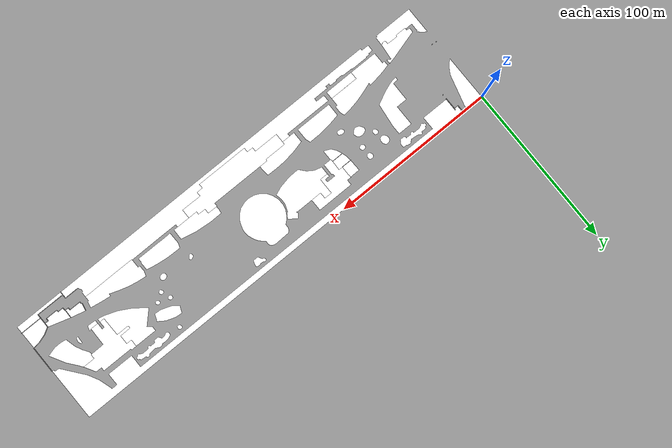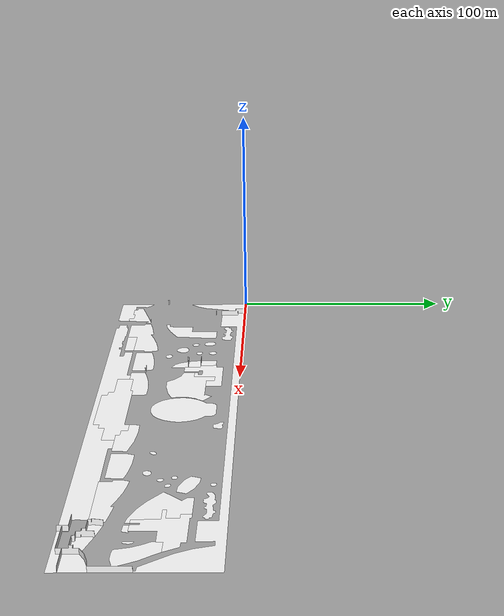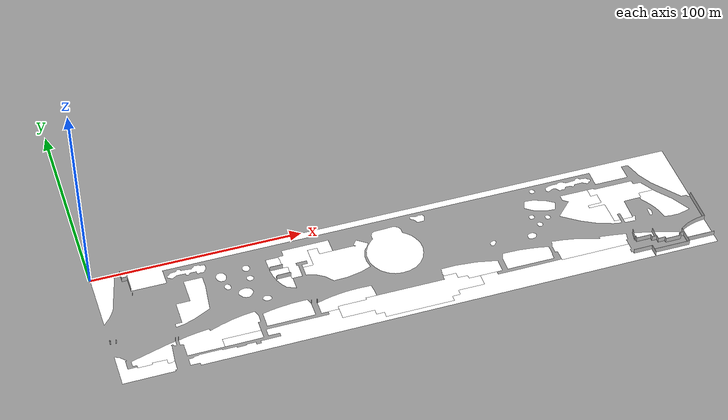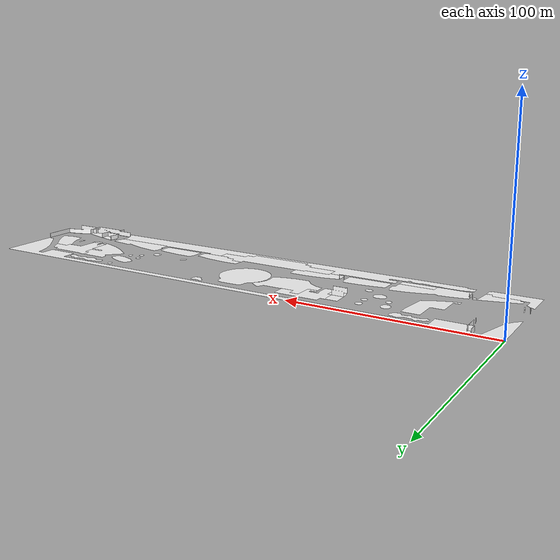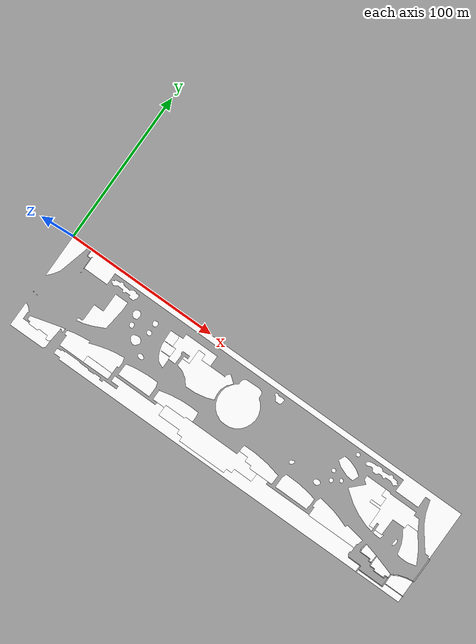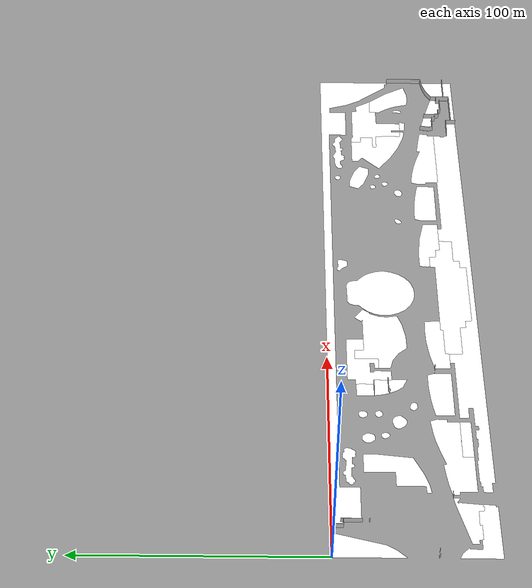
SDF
<sdf version="1.7">
 <model name="airport_terminal_L1">
  <static>true</static>
  <link name="floor_1">
   <visual name="visual">
    <geometry><mesh><uri>model://airport_terminal_L1/meshes/floor_1.obj</uri></mesh></geometry>
    <material>
     <diffuse>1.0 1.0 1.0</diffuse>
     <specular>0.1 0.1 0.1</specular>
     <pbr>
      <metal>
       <metalness>0.0</metalness>
       <albedo_map>model://airport_terminal_L1/meshes/concrete2.png</albedo_map>
      </metal>
     </pbr>
     <script><uri>model://airport_terminal_L1/meshes/</uri><name>floor_1_Diffuse</name></script>
    </material>
   </visual>
   <collision name="collision">
    <geometry><mesh><uri>model://airport_terminal_L1/meshes/floor_1.obj</uri></mesh></geometry>
    <surface><contact><collide_bitmask>0x01</collide_bitmask></contact></surface>
   </collision>
  </link>
  <link name="floor_2">
   <visual name="visual">
    <geometry><mesh><uri>model://airport_terminal_L1/meshes/floor_2.obj</uri></mesh></geometry>
    <material>
     <diffuse>1.0 1.0 1.0</diffuse>
     <specular>0.1 0.1 0.1</specular>
     <pbr>
      <metal>
       <metalness>0.0</metalness>
       <albedo_map>model://airport_terminal_L1/meshes/concrete2.png</albedo_map>
      </metal>
     </pbr>
     <script><uri>model://airport_terminal_L1/meshes/</uri><name>floor_2_Diffuse</name></script>
    </material>
   </visual>
   <collision name="collision">
    <geometry><mesh><uri>model://airport_terminal_L1/meshes/floor_2.obj</uri></mesh></geometry>
    <surface><contact><collide_bitmask>0x01</collide_bitmask></contact></surface>
   </collision>
  </link>
  <link name="floor_3">
   <visual name="visual">
    <geometry><mesh><uri>model://airport_terminal_L1/meshes/floor_3.obj</uri></mesh></geometry>
    <material>
     <diffuse>1.0 1.0 1.0</diffuse>
     <specular>0.1 0.1 0.1</specular>
     <pbr>
      <metal>
       <metalness>0.0</metalness>
       <albedo_map>model://airport_terminal_L1/meshes/concrete2.png</albedo_map>
      </metal>
     </pbr>
     <script><uri>model://airport_terminal_L1/meshes/</uri><name>floor_3_Diffuse</name></script>
    </material>
   </visual>
   <collision name="collision">
    <geometry><mesh><uri>model://airport_terminal_L1/meshes/floor_3.obj</uri></mesh></geometry>
    <surface><contact><collide_bitmask>0x01</collide_bitmask></contact></surface>
   </collision>
  </link>
  <link name="floor_4">
   <visual name="visual">
    <geometry><mesh><uri>model://airport_terminal_L1/meshes/floor_4.obj</uri></mesh></geometry>
    <material>
     <diffuse>1.0 1.0 1.0</diffuse>
     <specular>0.1 0.1 0.1</specular>
     <pbr>
      <metal>
       <metalness>0.0</metalness>
       <albedo_map>model://airport_terminal_L1/meshes/concrete2.png</albedo_map>
      </metal>
     </pbr>
     <script><uri>model://airport_terminal_L1/meshes/</uri><name>floor_4_Diffuse</name></script>
    </material>
   </visual>
   <collision name="collision">
    <geometry><mesh><uri>model://airport_terminal_L1/meshes/floor_4.obj</uri></mesh></geometry>
    <surface><contact><collide_bitmask>0x01</collide_bitmask></contact></surface>
   </collision>
  </link>
  <link name="floor_5">
   <visual name="visual">
    <geometry><mesh><uri>model://airport_terminal_L1/meshes/floor_5.obj</uri></mesh></geometry>
    <material>
     <diffuse>1.0 1.0 1.0</diffuse>
     <specular>0.1 0.1 0.1</specular>
     <pbr>
      <metal>
       <metalness>0.0</metalness>
       <albedo_map>model://airport_terminal_L1/meshes/concrete2.png</albedo_map>
      </metal>
     </pbr>
     <script><uri>model://airport_terminal_L1/meshes/</uri><name>floor_5_Diffuse</name></script>
    </material>
   </visual>
   <collision name="collision">
    <geometry><mesh><uri>model://airport_terminal_L1/meshes/floor_5.obj</uri></mesh></geometry>
    <surface><contact><collide_bitmask>0x01</collide_bitmask></contact></surface>
   </collision>
  </link>
  <link name="floor_6">
   <visual name="visual">
    <geometry><mesh><uri>model://airport_terminal_L1/meshes/floor_6.obj</uri></mesh></geometry>
    <material>
     <diffuse>1.0 1.0 1.0</diffuse>
     <specular>0.1 0.1 0.1</specular>
     <pbr>
      <metal>
       <metalness>0.0</metalness>
       <albedo_map>model://airport_terminal_L1/meshes/concrete2.png</albedo_map>
      </metal>
     </pbr>
     <script><uri>model://airport_terminal_L1/meshes/</uri><name>floor_6_Diffuse</name></script>
    </material>
   </visual>
   <collision name="collision">
    <geometry><mesh><uri>model://airport_terminal_L1/meshes/floor_6.obj</uri></mesh></geometry>
    <surface><contact><collide_bitmask>0x01</collide_bitmask></contact></surface>
   </collision>
  </link>
  <link name="floor_7">
   <visual name="visual">
    <geometry><mesh><uri>model://airport_terminal_L1/meshes/floor_7.obj</uri></mesh></geometry>
    <material>
     <diffuse>1.0 1.0 1.0</diffuse>
     <specular>0.1 0.1 0.1</specular>
     <pbr>
      <metal>
       <metalness>0.0</metalness>
       <albedo_map>model://airport_terminal_L1/meshes/concrete2.png</albedo_map>
      </metal>
     </pbr>
     <script><uri>model://airport_terminal_L1/meshes/</uri><name>floor_7_Diffuse</name></script>
    </material>
   </visual>
   <collision name="collision">
    <geometry><mesh><uri>model://airport_terminal_L1/meshes/floor_7.obj</uri></mesh></geometry>
    <surface><contact><collide_bitmask>0x01</collide_bitmask></contact></surface>
   </collision>
  </link>
  <link name="floor_8">
   <visual name="visual">
    <geometry><mesh><uri>model://airport_terminal_L1/meshes/floor_8.obj</uri></mesh></geometry>
    <material>
     <diffuse>1.0 1.0 1.0</diffuse>
     <specular>0.1 0.1 0.1</specular>
     <pbr>
      <metal>
       <metalness>0.0</metalness>
       <albedo_map>model://airport_terminal_L1/meshes/carpark_walkway.png</albedo_map>
      </metal>
     </pbr>
     <script><uri>model://airport_terminal_L1/meshes/</uri><name>floor_8_Diffuse</name></script>
    </material>
   </visual>
   <collision name="collision">
    <geometry><mesh><uri>model://airport_terminal_L1/meshes/floor_8.obj</uri></mesh></geometry>
    <surface><contact><collide_bitmask>0x01</collide_bitmask></contact></surface>
   </collision>
  </link>
  <link name="floor_9">
   <visual name="visual">
    <geometry><mesh><uri>model://airport_terminal_L1/meshes/floor_9.obj</uri></mesh></geometry>
    <material>
     <diffuse>1.0 1.0 1.0</diffuse>
     <specular>0.1 0.1 0.1</specular>
     <pbr>
      <metal>
       <metalness>0.0</metalness>
       <albedo_map>model://airport_terminal_L1/meshes/blue_linoleum_high_contrast.png</albedo_map>
      </metal>
     </pbr>
     <script><uri>model://airport_terminal_L1/meshes/</uri><name>floor_9_Diffuse</name></script>
    </material>
   </visual>
   <collision name="collision">
    <geometry><mesh><uri>model://airport_terminal_L1/meshes/floor_9.obj</uri></mesh></geometry>
    <surface><contact><collide_bitmask>0x01</collide_bitmask></contact></surface>
   </collision>
  </link>
  <link name="floor_10">
   <visual name="visual">
    <geometry><mesh><uri>model://airport_terminal_L1/meshes/floor_10.obj</uri></mesh></geometry>
    <material>
     <diffuse>1.0 1.0 1.0</diffuse>
     <specular>0.1 0.1 0.1</specular>
     <pbr>
      <metal>
       <metalness>0.0</metalness>
       <albedo_map>model://airport_terminal_L1/meshes/concrete2.png</albedo_map>
      </metal>
     </pbr>
     <script><uri>model://airport_terminal_L1/meshes/</uri><name>floor_10_Diffuse</name></script>
    </material>
   </visual>
   <collision name="collision">
    <geometry><mesh><uri>model://airport_terminal_L1/meshes/floor_10.obj</uri></mesh></geometry>
    <surface><contact><collide_bitmask>0x01</collide_bitmask></contact></surface>
   </collision>
  </link>
  <link name="floor_11">
   <visual name="visual">
    <geometry><mesh><uri>model://airport_terminal_L1/meshes/floor_11.obj</uri></mesh></geometry>
    <material>
     <diffuse>1.0 1.0 1.0</diffuse>
     <specular>0.1 0.1 0.1</specular>
     <pbr>
      <metal>
       <metalness>0.0</metalness>
       <albedo_map>model://airport_terminal_L1/meshes/concrete2.png</albedo_map>
      </metal>
     </pbr>
     <script><uri>model://airport_terminal_L1/meshes/</uri><name>floor_11_Diffuse</name></script>
    </material>
   </visual>
   <collision name="collision">
    <geometry><mesh><uri>model://airport_terminal_L1/meshes/floor_11.obj</uri></mesh></geometry>
    <surface><contact><collide_bitmask>0x01</collide_bitmask></contact></surface>
   </collision>
  </link>
  <link name="floor_12">
   <visual name="visual">
    <geometry><mesh><uri>model://airport_terminal_L1/meshes/floor_12.obj</uri></mesh></geometry>
    <material>
     <diffuse>1.0 1.0 1.0</diffuse>
     <specular>0.1 0.1 0.1</specular>
     <pbr>
      <metal>
       <metalness>0.0</metalness>
       <albedo_map>model://airport_terminal_L1/meshes/concrete2.png</albedo_map>
      </metal>
     </pbr>
     <script><uri>model://airport_terminal_L1/meshes/</uri><name>floor_12_Diffuse</name></script>
    </material>
   </visual>
   <collision name="collision">
    <geometry><mesh><uri>model://airport_terminal_L1/meshes/floor_12.obj</uri></mesh></geometry>
    <surface><contact><collide_bitmask>0x01</collide_bitmask></contact></surface>
   </collision>
  </link>
  <link name="floor_13">
   <visual name="visual">
    <geometry><mesh><uri>model://airport_terminal_L1/meshes/floor_13.obj</uri></mesh></geometry>
    <material>
     <diffuse>1.0 1.0 1.0</diffuse>
     <specular>0.1 0.1 0.1</specular>
     <pbr>
      <metal>
       <metalness>0.0</metalness>
       <albedo_map>model://airport_terminal_L1/meshes/concrete2.png</albedo_map>
      </metal>
     </pbr>
     <script><uri>model://airport_terminal_L1/meshes/</uri><name>floor_13_Diffuse</name></script>
    </material>
   </visual>
   <collision name="collision">
    <geometry><mesh><uri>model://airport_terminal_L1/meshes/floor_13.obj</uri></mesh></geometry>
    <surface><contact><collide_bitmask>0x01</collide_bitmask></contact></surface>
   </collision>
  </link>
  <link name="floor_14">
   <visual name="visual">
    <geometry><mesh><uri>model://airport_terminal_L1/meshes/floor_14.obj</uri></mesh></geometry>
    <material>
     <diffuse>1.0 1.0 1.0</diffuse>
     <specular>0.1 0.1 0.1</specular>
     <pbr>
      <metal>
       <metalness>0.0</metalness>
       <albedo_map>model://airport_terminal_L1/meshes/concrete2.png</albedo_map>
      </metal>
     </pbr>
     <script><uri>model://airport_terminal_L1/meshes/</uri><name>floor_14_Diffuse</name></script>
    </material>
   </visual>
   <collision name="collision">
    <geometry><mesh><uri>model://airport_terminal_L1/meshes/floor_14.obj</uri></mesh></geometry>
    <surface><contact><collide_bitmask>0x01</collide_bitmask></contact></surface>
   </collision>
  </link>
  <link name="floor_15">
   <visual name="visual">
    <geometry><mesh><uri>model://airport_terminal_L1/meshes/floor_15.obj</uri></mesh></geometry>
    <material>
     <diffuse>1.0 1.0 1.0</diffuse>
     <specular>0.1 0.1 0.1</specular>
     <pbr>
      <metal>
       <metalness>0.0</metalness>
       <albedo_map>model://airport_terminal_L1/meshes/concrete2.png</albedo_map>
      </metal>
     </pbr>
     <script><uri>model://airport_terminal_L1/meshes/</uri><name>floor_15_Diffuse</name></script>
    </material>
   </visual>
   <collision name="collision">
    <geometry><mesh><uri>model://airport_terminal_L1/meshes/floor_15.obj</uri></mesh></geometry>
    <surface><contact><collide_bitmask>0x01</collide_bitmask></contact></surface>
   </collision>
  </link>
  <link name="floor_16">
   <visual name="visual">
    <geometry><mesh><uri>model://airport_terminal_L1/meshes/floor_16.obj</uri></mesh></geometry>
    <material>
     <diffuse>1.0 1.0 1.0</diffuse>
     <specular>0.1 0.1 0.1</specular>
     <pbr>
      <metal>
       <metalness>0.0</metalness>
       <albedo_map>model://airport_terminal_L1/meshes/concrete2.png</albedo_map>
      </metal>
     </pbr>
     <script><uri>model://airport_terminal_L1/meshes/</uri><name>floor_16_Diffuse</name></script>
    </material>
   </visual>
   <collision name="collision">
    <geometry><mesh><uri>model://airport_terminal_L1/meshes/floor_16.obj</uri></mesh></geometry>
    <surface><contact><collide_bitmask>0x01</collide_bitmask></contact></surface>
   </collision>
  </link>
  <link name="floor_17">
   <visual name="visual">
    <geometry><mesh><uri>model://airport_terminal_L1/meshes/floor_17.obj</uri></mesh></geometry>
    <material>
     <diffuse>1.0 1.0 1.0</diffuse>
     <specular>0.1 0.1 0.1</specular>
     <pbr>
      <metal>
       <metalness>0.0</metalness>
       <albedo_map>model://airport_terminal_L1/meshes/concrete2.png</albedo_map>
      </metal>
     </pbr>
     <script><uri>model://airport_terminal_L1/meshes/</uri><name>floor_17_Diffuse</name></script>
    </material>
   </visual>
   <collision name="collision">
    <geometry><mesh><uri>model://airport_terminal_L1/meshes/floor_17.obj</uri></mesh></geometry>
    <surface><contact><collide_bitmask>0x01</collide_bitmask></contact></surface>
   </collision>
  </link>
  <link name="floor_18">
   <visual name="visual">
    <geometry><mesh><uri>model://airport_terminal_L1/meshes/floor_18.obj</uri></mesh></geometry>
    <material>
     <diffuse>1.0 1.0 1.0</diffuse>
     <specular>0.1 0.1 0.1</specular>
     <pbr>
      <metal>
       <metalness>0.0</metalness>
       <albedo_map>model://airport_terminal_L1/meshes/beige_tiles.png</albedo_map>
      </metal>
     </pbr>
     <script><uri>model://airport_terminal_L1/meshes/</uri><name>floor_18_Diffuse</name></script>
    </material>
   </visual>
   <collision name="collision">
    <geometry><mesh><uri>model://airport_terminal_L1/meshes/floor_18.obj</uri></mesh></geometry>
    <surface><contact><collide_bitmask>0x01</collide_bitmask></contact></surface>
   </collision>
  </link>
  <link name="floor_19">
   <visual name="visual">
    <geometry><mesh><uri>model://airport_terminal_L1/meshes/floor_19.obj</uri></mesh></geometry>
    <material>
     <diffuse>1.0 1.0 1.0</diffuse>
     <specular>0.1 0.1 0.1</specular>
     <pbr>
      <metal>
       <metalness>0.0</metalness>
       <albedo_map>model://airport_terminal_L1/meshes/red_tiles.png</albedo_map>
      </metal>
     </pbr>
     <script><uri>model://airport_terminal_L1/meshes/</uri><name>floor_19_Diffuse</name></script>
    </material>
   </visual>
   <collision name="collision">
    <geometry><mesh><uri>model://airport_terminal_L1/meshes/floor_19.obj</uri></mesh></geometry>
    <surface><contact><collide_bitmask>0x01</collide_bitmask></contact></surface>
   </collision>
  </link>
  <link name="floor_20">
   <visual name="visual">
    <geometry><mesh><uri>model://airport_terminal_L1/meshes/floor_20.obj</uri></mesh></geometry>
    <material>
     <diffuse>1.0 1.0 1.0</diffuse>
     <specular>0.1 0.1 0.1</specular>
     <pbr>
      <metal>
       <metalness>0.0</metalness>
       <albedo_map>model://airport_terminal_L1/meshes/concrete2.png</albedo_map>
      </metal>
     </pbr>
     <script><uri>model://airport_terminal_L1/meshes/</uri><name>floor_20_Diffuse</name></script>
    </material>
   </visual>
   <collision name="collision">
    <geometry><mesh><uri>model://airport_terminal_L1/meshes/floor_20.obj</uri></mesh></geometry>
    <surface><contact><collide_bitmask>0x01</collide_bitmask></contact></surface>
   </collision>
  </link>
  <link name="floor_21">
   <visual name="visual">
    <geometry><mesh><uri>model://airport_terminal_L1/meshes/floor_21.obj</uri></mesh></geometry>
    <material>
     <diffuse>1.0 1.0 1.0</diffuse>
     <specular>0.1 0.1 0.1</specular>
     <pbr>
      <metal>
       <metalness>0.0</metalness>
       <albedo_map>model://airport_terminal_L1/meshes/concrete2.png</albedo_map>
      </metal>
     </pbr>
     <script><uri>model://airport_terminal_L1/meshes/</uri><name>floor_21_Diffuse</name></script>
    </material>
   </visual>
   <collision name="collision">
    <geometry><mesh><uri>model://airport_terminal_L1/meshes/floor_21.obj</uri></mesh></geometry>
    <surface><contact><collide_bitmask>0x01</collide_bitmask></contact></surface>
   </collision>
  </link>
  <link name="floor_22">
   <visual name="visual">
    <geometry><mesh><uri>model://airport_terminal_L1/meshes/floor_22.obj</uri></mesh></geometry>
    <material>
     <diffuse>1.0 1.0 1.0</diffuse>
     <specular>0.1 0.1 0.1</specular>
     <pbr>
      <metal><metalness>0.0</metalness><albedo_map>model://airport_terminal_L1/meshes/beige.png</albedo_map></metal>
     </pbr>
     <script><uri>model://airport_terminal_L1/meshes/</uri><name>floor_22_Diffuse</name></script>
    </material>
   </visual>
   <collision name="collision">
    <geometry><mesh><uri>model://airport_terminal_L1/meshes/floor_22.obj</uri></mesh></geometry>
    <surface><contact><collide_bitmask>0x01</collide_bitmask></contact></surface>
   </collision>
  </link>
  <link name="floor_23">
   <visual name="visual">
    <geometry><mesh><uri>model://airport_terminal_L1/meshes/floor_23.obj</uri></mesh></geometry>
    <material>
     <diffuse>1.0 1.0 1.0</diffuse>
     <specular>0.1 0.1 0.1</specular>
     <pbr>
      <metal>
       <metalness>0.0</metalness>
       <albedo_map>model://airport_terminal_L1/meshes/black_glitter_marble.png</albedo_map>
      </metal>
     </pbr>
     <script><uri>model://airport_terminal_L1/meshes/</uri><name>floor_23_Diffuse</name></script>
    </material>
   </visual>
   <collision name="collision">
    <geometry><mesh><uri>model://airport_terminal_L1/meshes/floor_23.obj</uri></mesh></geometry>
    <surface><contact><collide_bitmask>0x01</collide_bitmask></contact></surface>
   </collision>
  </link>
  <link name="floor_24">
   <visual name="visual">
    <geometry><mesh><uri>model://airport_terminal_L1/meshes/floor_24.obj</uri></mesh></geometry>
    <material>
     <diffuse>1.0 1.0 1.0</diffuse>
     <specular>0.1 0.1 0.1</specular>
     <pbr>
      <metal>
       <metalness>0.0</metalness>
       <albedo_map>model://airport_terminal_L1/meshes/concrete2.png</albedo_map>
      </metal>
     </pbr>
     <script><uri>model://airport_terminal_L1/meshes/</uri><name>floor_24_Diffuse</name></script>
    </material>
   </visual>
   <collision name="collision">
    <geometry><mesh><uri>model://airport_terminal_L1/meshes/floor_24.obj</uri></mesh></geometry>
    <surface><contact><collide_bitmask>0x01</collide_bitmask></contact></surface>
   </collision>
  </link>
  <link name="floor_25">
   <visual name="visual">
    <geometry><mesh><uri>model://airport_terminal_L1/meshes/floor_25.obj</uri></mesh></geometry>
    <material>
     <diffuse>1.0 1.0 1.0</diffuse>
     <specular>0.1 0.1 0.1</specular>
     <pbr>
      <metal>
       <metalness>0.0</metalness>
       <albedo_map>model://airport_terminal_L1/meshes/concrete2.png</albedo_map>
      </metal>
     </pbr>
     <script><uri>model://airport_terminal_L1/meshes/</uri><name>floor_25_Diffuse</name></script>
    </material>
   </visual>
   <collision name="collision">
    <geometry><mesh><uri>model://airport_terminal_L1/meshes/floor_25.obj</uri></mesh></geometry>
    <surface><contact><collide_bitmask>0x01</collide_bitmask></contact></surface>
   </collision>
  </link>
  <link name="floor_26">
   <visual name="visual">
    <geometry><mesh><uri>model://airport_terminal_L1/meshes/floor_26.obj</uri></mesh></geometry>
    <material>
     <diffuse>1.0 1.0 1.0</diffuse>
     <specular>0.1 0.1 0.1</specular>
     <pbr>
      <metal>
       <metalness>0.0</metalness>
       <albedo_map>model://airport_terminal_L1/meshes/concrete2.png</albedo_map>
      </metal>
     </pbr>
     <script><uri>model://airport_terminal_L1/meshes/</uri><name>floor_26_Diffuse</name></script>
    </material>
   </visual>
   <collision name="collision">
    <geometry><mesh><uri>model://airport_terminal_L1/meshes/floor_26.obj</uri></mesh></geometry>
    <surface><contact><collide_bitmask>0x01</collide_bitmask></contact></surface>
   </collision>
  </link>
  <link name="floor_27">
   <visual name="visual">
    <geometry><mesh><uri>model://airport_terminal_L1/meshes/floor_27.obj</uri></mesh></geometry>
    <material>
     <diffuse>1.0 1.0 1.0</diffuse>
     <specular>0.1 0.1 0.1</specular>
     <pbr>
      <metal>
       <metalness>0.0</metalness>
       <albedo_map>model://airport_terminal_L1/meshes/concrete2.png</albedo_map>
      </metal>
     </pbr>
     <script><uri>model://airport_terminal_L1/meshes/</uri><name>floor_27_Diffuse</name></script>
    </material>
   </visual>
   <collision name="collision">
    <geometry><mesh><uri>model://airport_terminal_L1/meshes/floor_27.obj</uri></mesh></geometry>
    <surface><contact><collide_bitmask>0x01</collide_bitmask></contact></surface>
   </collision>
  </link>
  <link name="floor_28">
   <visual name="visual">
    <geometry><mesh><uri>model://airport_terminal_L1/meshes/floor_28.obj</uri></mesh></geometry>
    <material>
     <diffuse>1.0 1.0 1.0</diffuse>
     <specular>0.1 0.1 0.1</specular>
     <pbr>
      <metal>
       <metalness>0.0</metalness>
       <albedo_map>model://airport_terminal_L1/meshes/concrete2.png</albedo_map>
      </metal>
     </pbr>
     <script><uri>model://airport_terminal_L1/meshes/</uri><name>floor_28_Diffuse</name></script>
    </material>
   </visual>
   <collision name="collision">
    <geometry><mesh><uri>model://airport_terminal_L1/meshes/floor_28.obj</uri></mesh></geometry>
    <surface><contact><collide_bitmask>0x01</collide_bitmask></contact></surface>
   </collision>
  </link>
  <link name="floor_29">
   <visual name="visual">
    <geometry><mesh><uri>model://airport_terminal_L1/meshes/floor_29.obj</uri></mesh></geometry>
    <material>
     <diffuse>1.0 1.0 1.0</diffuse>
     <specular>0.1 0.1 0.1</specular>
     <pbr>
      <metal>
       <metalness>0.0</metalness>
       <albedo_map>model://airport_terminal_L1/meshes/white_marble.png</albedo_map>
      </metal>
     </pbr>
     <script><uri>model://airport_terminal_L1/meshes/</uri><name>floor_29_Diffuse</name></script>
    </material>
   </visual>
   <collision name="collision">
    <geometry><mesh><uri>model://airport_terminal_L1/meshes/floor_29.obj</uri></mesh></geometry>
    <surface><contact><collide_bitmask>0x01</collide_bitmask></contact></surface>
   </collision>
  </link>
  <link name="floor_30">
   <visual name="visual">
    <geometry><mesh><uri>model://airport_terminal_L1/meshes/floor_30.obj</uri></mesh></geometry>
    <material>
     <diffuse>1.0 1.0 1.0</diffuse>
     <specular>0.1 0.1 0.1</specular>
     <pbr>
      <metal>
       <metalness>0.0</metalness>
       <albedo_map>model://airport_terminal_L1/meshes/concrete2.png</albedo_map>
      </metal>
     </pbr>
     <script><uri>model://airport_terminal_L1/meshes/</uri><name>floor_30_Diffuse</name></script>
    </material>
   </visual>
   <collision name="collision">
    <geometry><mesh><uri>model://airport_terminal_L1/meshes/floor_30.obj</uri></mesh></geometry>
    <surface><contact><collide_bitmask>0x01</collide_bitmask></contact></surface>
   </collision>
  </link>
  <link name="floor_31">
   <visual name="visual">
    <geometry><mesh><uri>model://airport_terminal_L1/meshes/floor_31.obj</uri></mesh></geometry>
    <material>
     <diffuse>1.0 1.0 1.0</diffuse>
     <specular>0.1 0.1 0.1</specular>
     <pbr>
      <metal>
       <metalness>0.0</metalness>
       <albedo_map>model://airport_terminal_L1/meshes/white_marble.png</albedo_map>
      </metal>
     </pbr>
     <script><uri>model://airport_terminal_L1/meshes/</uri><name>floor_31_Diffuse</name></script>
    </material>
   </visual>
   <collision name="collision">
    <geometry><mesh><uri>model://airport_terminal_L1/meshes/floor_31.obj</uri></mesh></geometry>
    <surface><contact><collide_bitmask>0x01</collide_bitmask></contact></surface>
   </collision>
  </link>
  <link name="floor_32">
   <visual name="visual">
    <geometry><mesh><uri>model://airport_terminal_L1/meshes/floor_32.obj</uri></mesh></geometry>
    <material>
     <diffuse>1.0 1.0 1.0</diffuse>
     <specular>0.1 0.1 0.1</specular>
     <pbr>
      <metal>
       <metalness>0.0</metalness>
       <albedo_map>model://airport_terminal_L1/meshes/blue_linoleum_high_contrast.png</albedo_map>
      </metal>
     </pbr>
     <script><uri>model://airport_terminal_L1/meshes/</uri><name>floor_32_Diffuse</name></script>
    </material>
   </visual>
   <collision name="collision">
    <geometry><mesh><uri>model://airport_terminal_L1/meshes/floor_32.obj</uri></mesh></geometry>
    <surface><contact><collide_bitmask>0x01</collide_bitmask></contact></surface>
   </collision>
  </link>
  <link name="floor_33">
   <visual name="visual">
    <geometry><mesh><uri>model://airport_terminal_L1/meshes/floor_33.obj</uri></mesh></geometry>
    <material>
     <diffuse>1.0 1.0 1.0</diffuse>
     <specular>0.1 0.1 0.1</specular>
     <pbr>
      <metal>
       <metalness>0.0</metalness>
       <albedo_map>model://airport_terminal_L1/meshes/concrete2.png</albedo_map>
      </metal>
     </pbr>
     <script><uri>model://airport_terminal_L1/meshes/</uri><name>floor_33_Diffuse</name></script>
    </material>
   </visual>
   <collision name="collision">
    <geometry><mesh><uri>model://airport_terminal_L1/meshes/floor_33.obj</uri></mesh></geometry>
    <surface><contact><collide_bitmask>0x01</collide_bitmask></contact></surface>
   </collision>
  </link>
  <link name="floor_34">
   <visual name="visual">
    <geometry><mesh><uri>model://airport_terminal_L1/meshes/floor_34.obj</uri></mesh></geometry>
    <material>
     <diffuse>1.0 1.0 1.0</diffuse>
     <specular>0.1 0.1 0.1</specular>
     <pbr>
      <metal>
       <metalness>0.0</metalness>
       <albedo_map>model://airport_terminal_L1/meshes/concrete2.png</albedo_map>
      </metal>
     </pbr>
     <script><uri>model://airport_terminal_L1/meshes/</uri><name>floor_34_Diffuse</name></script>
    </material>
   </visual>
   <collision name="collision">
    <geometry><mesh><uri>model://airport_terminal_L1/meshes/floor_34.obj</uri></mesh></geometry>
    <surface><contact><collide_bitmask>0x01</collide_bitmask></contact></surface>
   </collision>
  </link>
  <link name="floor_35">
   <visual name="visual">
    <geometry><mesh><uri>model://airport_terminal_L1/meshes/floor_35.obj</uri></mesh></geometry>
    <material>
     <diffuse>1.0 1.0 1.0</diffuse>
     <specular>0.1 0.1 0.1</specular>
     <pbr>
      <metal>
       <metalness>0.0</metalness>
       <albedo_map>model://airport_terminal_L1/meshes/concrete2.png</albedo_map>
      </metal>
     </pbr>
     <script><uri>model://airport_terminal_L1/meshes/</uri><name>floor_35_Diffuse</name></script>
    </material>
   </visual>
   <collision name="collision">
    <geometry><mesh><uri>model://airport_terminal_L1/meshes/floor_35.obj</uri></mesh></geometry>
    <surface><contact><collide_bitmask>0x01</collide_bitmask></contact></surface>
   </collision>
  </link>
  <link name="floor_36">
   <visual name="visual">
    <geometry><mesh><uri>model://airport_terminal_L1/meshes/floor_36.obj</uri></mesh></geometry>
    <material>
     <diffuse>1.0 1.0 1.0</diffuse>
     <specular>0.1 0.1 0.1</specular>
     <pbr>
      <metal>
       <metalness>0.0</metalness>
       <albedo_map>model://airport_terminal_L1/meshes/concrete2.png</albedo_map>
      </metal>
     </pbr>
     <script><uri>model://airport_terminal_L1/meshes/</uri><name>floor_36_Diffuse</name></script>
    </material>
   </visual>
   <collision name="collision">
    <geometry><mesh><uri>model://airport_terminal_L1/meshes/floor_36.obj</uri></mesh></geometry>
    <surface><contact><collide_bitmask>0x01</collide_bitmask></contact></surface>
   </collision>
  </link>
  <link name="floor_37">
   <visual name="visual">
    <geometry><mesh><uri>model://airport_terminal_L1/meshes/floor_37.obj</uri></mesh></geometry>
    <material>
     <diffuse>1.0 1.0 1.0</diffuse>
     <specular>0.1 0.1 0.1</specular>
     <pbr>
      <metal>
       <metalness>0.0</metalness>
       <albedo_map>model://airport_terminal_L1/meshes/concrete2.png</albedo_map>
      </metal>
     </pbr>
     <script><uri>model://airport_terminal_L1/meshes/</uri><name>floor_37_Diffuse</name></script>
    </material>
   </visual>
   <collision name="collision">
    <geometry><mesh><uri>model://airport_terminal_L1/meshes/floor_37.obj</uri></mesh></geometry>
    <surface><contact><collide_bitmask>0x01</collide_bitmask></contact></surface>
   </collision>
  </link>
  <link name="floor_38">
   <visual name="visual">
    <geometry><mesh><uri>model://airport_terminal_L1/meshes/floor_38.obj</uri></mesh></geometry>
    <material>
     <diffuse>1.0 1.0 1.0</diffuse>
     <specular>0.1 0.1 0.1</specular>
     <pbr>
      <metal>
       <metalness>0.0</metalness>
       <albedo_map>model://airport_terminal_L1/meshes/concrete2.png</albedo_map>
      </metal>
     </pbr>
     <script><uri>model://airport_terminal_L1/meshes/</uri><name>floor_38_Diffuse</name></script>
    </material>
   </visual>
   <collision name="collision">
    <geometry><mesh><uri>model://airport_terminal_L1/meshes/floor_38.obj</uri></mesh></geometry>
    <surface><contact><collide_bitmask>0x01</collide_bitmask></contact></surface>
   </collision>
  </link>
  <link name="floor_39">
   <visual name="visual">
    <geometry><mesh><uri>model://airport_terminal_L1/meshes/floor_39.obj</uri></mesh></geometry>
    <material>
     <diffuse>1.0 1.0 1.0</diffuse>
     <specular>0.1 0.1 0.1</specular>
     <pbr>
      <metal>
       <metalness>0.0</metalness>
       <albedo_map>model://airport_terminal_L1/meshes/concrete2.png</albedo_map>
      </metal>
     </pbr>
     <script><uri>model://airport_terminal_L1/meshes/</uri><name>floor_39_Diffuse</name></script>
    </material>
   </visual>
   <collision name="collision">
    <geometry><mesh><uri>model://airport_terminal_L1/meshes/floor_39.obj</uri></mesh></geometry>
    <surface><contact><collide_bitmask>0x01</collide_bitmask></contact></surface>
   </collision>
  </link>
  <link name="floor_40">
   <visual name="visual">
    <geometry><mesh><uri>model://airport_terminal_L1/meshes/floor_40.obj</uri></mesh></geometry>
    <material>
     <diffuse>1.0 1.0 1.0</diffuse>
     <specular>0.1 0.1 0.1</specular>
     <pbr>
      <metal>
       <metalness>0.0</metalness>
       <albedo_map>model://airport_terminal_L1/meshes/concrete2.png</albedo_map>
      </metal>
     </pbr>
     <script><uri>model://airport_terminal_L1/meshes/</uri><name>floor_40_Diffuse</name></script>
    </material>
   </visual>
   <collision name="collision">
    <geometry><mesh><uri>model://airport_terminal_L1/meshes/floor_40.obj</uri></mesh></geometry>
    <surface><contact><collide_bitmask>0x01</collide_bitmask></contact></surface>
   </collision>
  </link>
  <link name="wall_2">
   <visual name="wall_2">
    <geometry><mesh><uri>model://airport_terminal_L1/meshes/wall_2.obj</uri></mesh></geometry>
    <transparency>0.0</transparency>
    <material>
     <diffuse>1.0 1.0 1.0</diffuse>
     <specular>0.1 0.1 0.1</specular>
     <pbr>
      <metal>
       <metalness>0.0</metalness>
       <albedo_map>model://airport_terminal_L1/meshes/red_tiles.png</albedo_map>
      </metal>
     </pbr>
     <script><uri>model://airport_terminal_L1/meshes/</uri><name>wall_2_Diffuse</name></script>
    </material>
   </visual>
   <collision name="collision">
    <geometry><mesh><uri>model://airport_terminal_L1/meshes/wall_2.obj</uri></mesh></geometry>
    <surface><contact><collide_bitmask>0x01</collide_bitmask></contact></surface>
   </collision>
   <pose>-0.03776335103881037 -64.20202688263598 0 0 0 0</pose>
  </link>
 </model>
</sdf>
